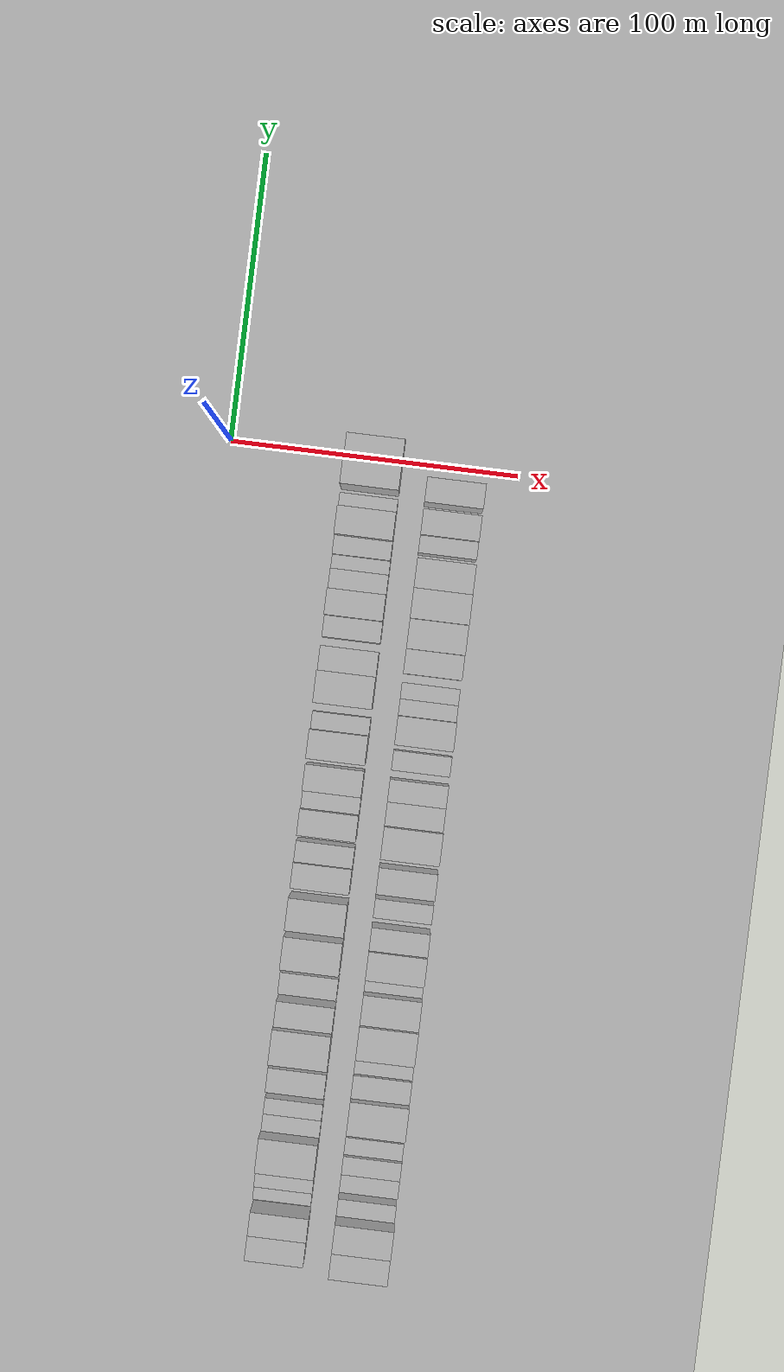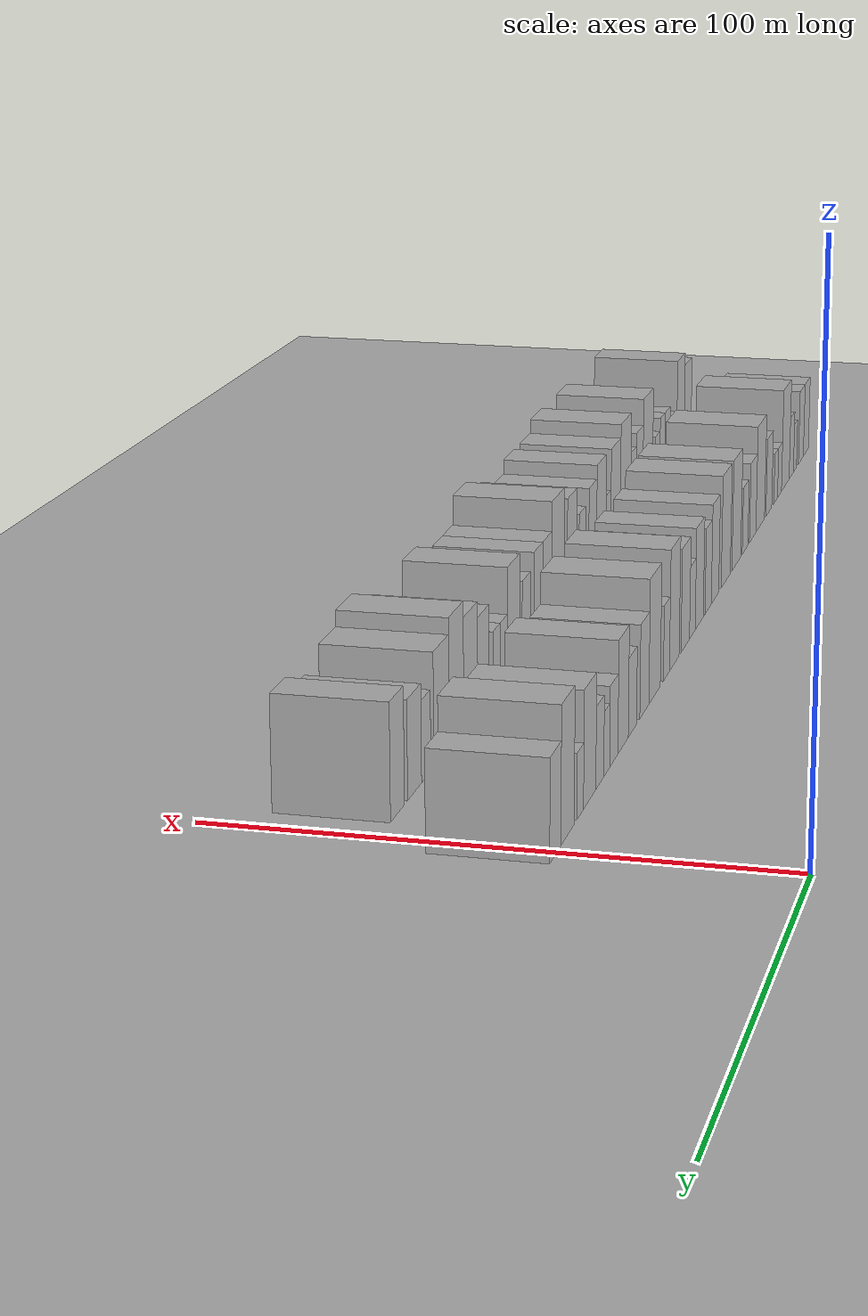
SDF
<sdf version="1.6">
 <world name="default">
  <include><name>ground_plane_1</name><uri>model://HANNAS_ground_plane</uri></include>
  <include>
   <name>ground_plane_2</name>
   <uri>model://HANNAS_ground_plane</uri>
   <pose>100 0 0  0 0 0</pose>
  </include>
  <model name="building_1">
   <static>1</static>
   <pose>50.0000 -271.8112 0 0.000000 0.000000 0.000000</pose>
   <link name="link">
    <pose>0 0 9.00 0 0 0</pose>
    <collision name="collision"><geometry><box><size>20.0000 8.3775 18.0000</size></box></geometry></collision>
    <visual name="visual">
     <cast_shadows>0</cast_shadows>
     <geometry><box><size>20.0000 8.3775 18.0000</size></box></geometry>
     <material>
      <script>
       <uri>model://HANNAS_wall/materials/scripts</uri>
       <uri>model://HANNAS_wall/materials/textures</uri>
       <name>vrc/HANNAS_wall</name>
      </script>
     </material>
    </visual>
   </link>
  </model>
  <model name="building_2">
   <static>1</static>
   <pose>50.0000 -263.5821 0 0.000000 0.000000 0.000000</pose>
   <link name="link">
    <pose>0 0 9.00 0 0 0</pose>
    <collision name="collision"><geometry><box><size>20.0000 8.0807 18.0000</size></box></geometry></collision>
    <visual name="visual">
     <cast_shadows>0</cast_shadows>
     <geometry><box><size>20.0000 8.0807 18.0000</size></box></geometry>
     <material>
      <script>
       <uri>model://HANNAS_wall/materials/scripts</uri>
       <uri>model://HANNAS_wall/materials/textures</uri>
       <name>vrc/HANNAS_wall</name>
      </script>
     </material>
    </visual>
   </link>
  </model>
  <model name="building_3">
   <static>1</static>
   <pose>50.0000 -254.0645 0 0.000000 0.000000 0.000000</pose>
   <link name="link">
    <pose>0 0 6.00 0 0 0</pose>
    <collision name="collision"><geometry><box><size>20.0000 4.9545 12.0000</size></box></geometry></collision>
    <visual name="visual">
     <cast_shadows>0</cast_shadows>
     <geometry><box><size>20.0000 4.9545 12.0000</size></box></geometry>
     <material>
      <script>
       <uri>model://HANNAS_wall/materials/scripts</uri>
       <uri>model://HANNAS_wall/materials/textures</uri>
       <name>vrc/HANNAS_wall</name>
      </script>
     </material>
    </visual>
   </link>
  </model>
  <model name="building_4">
   <static>1</static>
   <pose>50.0000 -248.2441 0 0.000000 0.000000 0.000000</pose>
   <link name="link">
    <pose>0 0 7.50 0 0 0</pose>
    <collision name="collision"><geometry><box><size>20.0000 6.6865 15.0000</size></box></geometry></collision>
    <visual name="visual">
     <cast_shadows>0</cast_shadows>
     <geometry><box><size>20.0000 6.6865 15.0000</size></box></geometry>
     <material>
      <script>
       <uri>model://HANNAS_wall/materials/scripts</uri>
       <uri>model://HANNAS_wall/materials/textures</uri>
       <name>vrc/HANNAS_wall</name>
      </script>
     </material>
    </visual>
   </link>
  </model>
  <model name="building_5">
   <static>1</static>
   <pose>50.0000 -239.0377 0 0.000000 0.000000 0.000000</pose>
   <link name="link">
    <pose>0 0 12.00 0 0 0</pose>
    <collision name="collision"><geometry><box><size>20.0000 11.7262 24.0000</size></box></geometry></collision>
    <visual name="visual">
     <cast_shadows>0</cast_shadows>
     <geometry><box><size>20.0000 11.7262 24.0000</size></box></geometry>
     <material>
      <script>
       <uri>model://HANNAS_wall/materials/scripts</uri>
       <uri>model://HANNAS_wall/materials/textures</uri>
       <name>vrc/HANNAS_wall</name>
      </script>
     </material>
    </visual>
   </link>
  </model>
  <model name="building_6">
   <static>1</static>
   <pose>50.0000 -230.2332 0 0.000000 0.000000 0.000000</pose>
   <link name="link">
    <pose>0 0 6.00 0 0 0</pose>
    <collision name="collision"><geometry><box><size>20.0000 5.8830 12.0000</size></box></geometry></collision>
    <visual name="visual">
     <cast_shadows>0</cast_shadows>
     <geometry><box><size>20.0000 5.8830 12.0000</size></box></geometry>
     <material>
      <script>
       <uri>model://HANNAS_wall/materials/scripts</uri>
       <uri>model://HANNAS_wall/materials/textures</uri>
       <name>vrc/HANNAS_wall</name>
      </script>
     </material>
    </visual>
   </link>
  </model>
  <model name="building_7">
   <static>1</static>
   <pose>50.0000 -224.5194 0 0.000000 0.000000 0.000000</pose>
   <link name="link">
    <pose>0 0 6.00 0 0 0</pose>
    <collision name="collision"><geometry><box><size>20.0000 5.5444 12.0000</size></box></geometry></collision>
    <visual name="visual">
     <cast_shadows>0</cast_shadows>
     <geometry><box><size>20.0000 5.5444 12.0000</size></box></geometry>
     <material>
      <script>
       <uri>model://HANNAS_wall/materials/scripts</uri>
       <uri>model://HANNAS_wall/materials/textures</uri>
       <name>vrc/HANNAS_wall</name>
      </script>
     </material>
    </visual>
   </link>
  </model>
  <model name="building_8">
   <static>1</static>
   <pose>50.0000 -214.5819 0 0.000000 0.000000 0.000000</pose>
   <link name="link">
    <pose>0 0 9.00 0 0 0</pose>
    <collision name="collision"><geometry><box><size>20.0000 8.3306 18.0000</size></box></geometry></collision>
    <visual name="visual">
     <cast_shadows>0</cast_shadows>
     <geometry><box><size>20.0000 8.3306 18.0000</size></box></geometry>
     <material>
      <script>
       <uri>model://HANNAS_wall/materials/scripts</uri>
       <uri>model://HANNAS_wall/materials/textures</uri>
       <name>vrc/HANNAS_wall</name>
      </script>
     </material>
    </visual>
   </link>
  </model>
  <model name="building_9">
   <static>1</static>
   <pose>50.0000 -202.4468 0 0.000000 0.000000 0.000000</pose>
   <link name="link">
    <pose>0 0 12.00 0 0 0</pose>
    <collision name="collision"><geometry><box><size>20.0000 11.9398 24.0000</size></box></geometry></collision>
    <visual name="visual">
     <cast_shadows>0</cast_shadows>
     <geometry><box><size>20.0000 11.9398 24.0000</size></box></geometry>
     <material>
      <script>
       <uri>model://HANNAS_wall/materials/scripts</uri>
       <uri>model://HANNAS_wall/materials/textures</uri>
       <name>vrc/HANNAS_wall</name>
      </script>
     </material>
    </visual>
   </link>
  </model>
  <model name="building_10">
   <static>1</static>
   <pose>50.0000 -192.0998 0 0.000000 0.000000 0.000000</pose>
   <link name="link">
    <pose>0 0 9.00 0 0 0</pose>
    <collision name="collision"><geometry><box><size>20.0000 8.7543 18.0000</size></box></geometry></collision>
    <visual name="visual">
     <cast_shadows>0</cast_shadows>
     <geometry><box><size>20.0000 8.7543 18.0000</size></box></geometry>
     <material>
      <script>
       <uri>model://HANNAS_wall/materials/scripts</uri>
       <uri>model://HANNAS_wall/materials/textures</uri>
       <name>vrc/HANNAS_wall</name>
      </script>
     </material>
    </visual>
   </link>
  </model>
  <model name="building_11">
   <static>1</static>
   <pose>50.0000 -182.0048 0 0.000000 0.000000 0.000000</pose>
   <link name="link">
    <pose>0 0 7.50 0 0 0</pose>
    <collision name="collision"><geometry><box><size>20.0000 7.4357 15.0000</size></box></geometry></collision>
    <visual name="visual">
     <cast_shadows>0</cast_shadows>
     <geometry><box><size>20.0000 7.4357 15.0000</size></box></geometry>
     <material>
      <script>
       <uri>model://HANNAS_wall/materials/scripts</uri>
       <uri>model://HANNAS_wall/materials/textures</uri>
       <name>vrc/HANNAS_wall</name>
      </script>
     </material>
    </visual>
   </link>
  </model>
  <model name="building_12">
   <static>1</static>
   <pose>50.0000 -170.6904 0 0.000000 0.000000 0.000000</pose>
   <link name="link">
    <pose>0 0 12.00 0 0 0</pose>
    <collision name="collision"><geometry><box><size>20.0000 11.1929 24.0000</size></box></geometry></collision>
    <visual name="visual">
     <cast_shadows>0</cast_shadows>
     <geometry><box><size>20.0000 11.1929 24.0000</size></box></geometry>
     <material>
      <script>
       <uri>model://HANNAS_wall/materials/scripts</uri>
       <uri>model://HANNAS_wall/materials/textures</uri>
       <name>vrc/HANNAS_wall</name>
      </script>
     </material>
    </visual>
   </link>
  </model>
  <model name="building_13">
   <static>1</static>
   <pose>50.0000 -157.5460 0 0.000000 0.000000 0.000000</pose>
   <link name="link">
    <pose>0 0 12.00 0 0 0</pose>
    <collision name="collision"><geometry><box><size>20.0000 11.0958 24.0000</size></box></geometry></collision>
    <visual name="visual">
     <cast_shadows>0</cast_shadows>
     <geometry><box><size>20.0000 11.0958 24.0000</size></box></geometry>
     <material>
      <script>
       <uri>model://HANNAS_wall/materials/scripts</uri>
       <uri>model://HANNAS_wall/materials/textures</uri>
       <name>vrc/HANNAS_wall</name>
      </script>
     </material>
    </visual>
   </link>
  </model>
  <model name="building_14">
   <static>1</static>
   <pose>50.0000 -144.6521 0 0.000000 0.000000 0.000000</pose>
   <link name="link">
    <pose>0 0 10.50 0 0 0</pose>
    <collision name="collision"><geometry><box><size>20.0000 8.6921 21.0000</size></box></geometry></collision>
    <visual name="visual">
     <cast_shadows>0</cast_shadows>
     <geometry><box><size>20.0000 8.6921 21.0000</size></box></geometry>
     <material>
      <script>
       <uri>model://HANNAS_wall/materials/scripts</uri>
       <uri>model://HANNAS_wall/materials/textures</uri>
       <name>vrc/HANNAS_wall</name>
      </script>
     </material>
    </visual>
   </link>
  </model>
  <model name="building_15">
   <static>1</static>
   <pose>50.0000 -136.6996 0 0.000000 0.000000 0.000000</pose>
   <link name="link">
    <pose>0 0 9.00 0 0 0</pose>
    <collision name="collision"><geometry><box><size>20.0000 7.2128 18.0000</size></box></geometry></collision>
    <visual name="visual">
     <cast_shadows>0</cast_shadows>
     <geometry><box><size>20.0000 7.2128 18.0000</size></box></geometry>
     <material>
      <script>
       <uri>model://HANNAS_wall/materials/scripts</uri>
       <uri>model://HANNAS_wall/materials/textures</uri>
       <name>vrc/HANNAS_wall</name>
      </script>
     </material>
    </visual>
   </link>
  </model>
  <model name="building_16">
   <static>1</static>
   <pose>50.0000 -126.6089 0 0.000000 0.000000 0.000000</pose>
   <link name="link">
    <pose>0 0 10.50 0 0 0</pose>
    <collision name="collision"><geometry><box><size>20.0000 8.9687 21.0000</size></box></geometry></collision>
    <visual name="visual">
     <cast_shadows>0</cast_shadows>
     <geometry><box><size>20.0000 8.9687 21.0000</size></box></geometry>
     <material>
      <script>
       <uri>model://HANNAS_wall/materials/scripts</uri>
       <uri>model://HANNAS_wall/materials/textures</uri>
       <name>vrc/HANNAS_wall</name>
      </script>
     </material>
    </visual>
   </link>
  </model>
  <model name="building_17">
   <static>1</static>
   <pose>50.0000 -119.0434 0 0.000000 0.000000 0.000000</pose>
   <link name="link">
    <pose>0 0 7.50 0 0 0</pose>
    <collision name="collision"><geometry><box><size>20.0000 6.1621 15.0000</size></box></geometry></collision>
    <visual name="visual">
     <cast_shadows>0</cast_shadows>
     <geometry><box><size>20.0000 6.1621 15.0000</size></box></geometry>
     <material>
      <script>
       <uri>model://HANNAS_wall/materials/scripts</uri>
       <uri>model://HANNAS_wall/materials/textures</uri>
       <name>vrc/HANNAS_wall</name>
      </script>
     </material>
    </visual>
   </link>
  </model>
  <model name="building_18">
   <static>1</static>
   <pose>50.0000 -111.4475 0 0.000000 0.000000 0.000000</pose>
   <link name="link">
    <pose>0 0 10.50 0 0 0</pose>
    <collision name="collision"><geometry><box><size>20.0000 9.0298 21.0000</size></box></geometry></collision>
    <visual name="visual">
     <cast_shadows>0</cast_shadows>
     <geometry><box><size>20.0000 9.0298 21.0000</size></box></geometry>
     <material>
      <script>
       <uri>model://HANNAS_wall/materials/scripts</uri>
       <uri>model://HANNAS_wall/materials/textures</uri>
       <name>vrc/HANNAS_wall</name>
      </script>
     </material>
    </visual>
   </link>
  </model>
  <model name="building_19">
   <static>1</static>
   <pose>50.0000 -99.9927 0 0.000000 0.000000 0.000000</pose>
   <link name="link">
    <pose>0 0 12.00 0 0 0</pose>
    <collision name="collision"><geometry><box><size>20.0000 9.8798 24.0000</size></box></geometry></collision>
    <visual name="visual">
     <cast_shadows>0</cast_shadows>
     <geometry><box><size>20.0000 9.8798 24.0000</size></box></geometry>
     <material>
      <script>
       <uri>model://HANNAS_wall/materials/scripts</uri>
       <uri>model://HANNAS_wall/materials/textures</uri>
       <name>vrc/HANNAS_wall</name>
      </script>
     </material>
    </visual>
   </link>
  </model>
  <model name="building_20">
   <static>1</static>
   <pose>50.0000 -92.0321 0 0.000000 0.000000 0.000000</pose>
   <link name="link">
    <pose>0 0 7.50 0 0 0</pose>
    <collision name="collision"><geometry><box><size>20.0000 6.0414 15.0000</size></box></geometry></collision>
    <visual name="visual">
     <cast_shadows>0</cast_shadows>
     <geometry><box><size>20.0000 6.0414 15.0000</size></box></geometry>
     <material>
      <script>
       <uri>model://HANNAS_wall/materials/scripts</uri>
       <uri>model://HANNAS_wall/materials/textures</uri>
       <name>vrc/HANNAS_wall</name>
      </script>
     </material>
    </visual>
   </link>
  </model>
  <model name="building_21">
   <static>1</static>
   <pose>50.0000 -80.5241 0 0.000000 0.000000 0.000000</pose>
   <link name="link">
    <pose>0 0 12.00 0 0 0</pose>
    <collision name="collision"><geometry><box><size>20.0000 10.9745 24.0000</size></box></geometry></collision>
    <visual name="visual">
     <cast_shadows>0</cast_shadows>
     <geometry><box><size>20.0000 10.9745 24.0000</size></box></geometry>
     <material>
      <script>
       <uri>model://HANNAS_wall/materials/scripts</uri>
       <uri>model://HANNAS_wall/materials/textures</uri>
       <name>vrc/HANNAS_wall</name>
      </script>
     </material>
    </visual>
   </link>
  </model>
  <model name="building_22">
   <static>1</static>
   <pose>50.0000 -70.8118 0 0.000000 0.000000 0.000000</pose>
   <link name="link">
    <pose>0 0 9.00 0 0 0</pose>
    <collision name="collision"><geometry><box><size>20.0000 8.4502 18.0000</size></box></geometry></collision>
    <visual name="visual">
     <cast_shadows>0</cast_shadows>
     <geometry><box><size>20.0000 8.4502 18.0000</size></box></geometry>
     <material>
      <script>
       <uri>model://HANNAS_wall/materials/scripts</uri>
       <uri>model://HANNAS_wall/materials/textures</uri>
       <name>vrc/HANNAS_wall</name>
      </script>
     </material>
    </visual>
   </link>
  </model>
  <model name="building_23">
   <static>1</static>
   <pose>50.0000 -59.8838 0 0.000000 0.000000 0.000000</pose>
   <link name="link">
    <pose>0 0 7.50 0 0 0</pose>
    <collision name="collision"><geometry><box><size>20.0000 7.4058 15.0000</size></box></geometry></collision>
    <visual name="visual">
     <cast_shadows>0</cast_shadows>
     <geometry><box><size>20.0000 7.4058 15.0000</size></box></geometry>
     <material>
      <script>
       <uri>model://HANNAS_wall/materials/scripts</uri>
       <uri>model://HANNAS_wall/materials/textures</uri>
       <name>vrc/HANNAS_wall</name>
      </script>
     </material>
    </visual>
   </link>
  </model>
  <model name="building_24">
   <static>1</static>
   <pose>50.0000 -51.6690 0 0.000000 0.000000 0.000000</pose>
   <link name="link">
    <pose>0 0 10.50 0 0 0</pose>
    <collision name="collision"><geometry><box><size>20.0000 9.0238 21.0000</size></box></geometry></collision>
    <visual name="visual">
     <cast_shadows>0</cast_shadows>
     <geometry><box><size>20.0000 9.0238 21.0000</size></box></geometry>
     <material>
      <script>
       <uri>model://HANNAS_wall/materials/scripts</uri>
       <uri>model://HANNAS_wall/materials/textures</uri>
       <name>vrc/HANNAS_wall</name>
      </script>
     </material>
    </visual>
   </link>
  </model>
  <model name="building_25">
   <static>1</static>
   <pose>50.0000 -43.6620 0 0.000000 0.000000 0.000000</pose>
   <link name="link">
    <pose>0 0 7.50 0 0 0</pose>
    <collision name="collision"><geometry><box><size>20.0000 6.9903 15.0000</size></box></geometry></collision>
    <visual name="visual">
     <cast_shadows>0</cast_shadows>
     <geometry><box><size>20.0000 6.9903 15.0000</size></box></geometry>
     <material>
      <script>
       <uri>model://HANNAS_wall/materials/scripts</uri>
       <uri>model://HANNAS_wall/materials/textures</uri>
       <name>vrc/HANNAS_wall</name>
      </script>
     </material>
    </visual>
   </link>
  </model>
  <model name="building_26">
   <static>1</static>
   <pose>50.0000 -37.7205 0 0.000000 0.000000 0.000000</pose>
   <link name="link">
    <pose>0 0 6.00 0 0 0</pose>
    <collision name="collision"><geometry><box><size>20.0000 4.8926 12.0000</size></box></geometry></collision>
    <visual name="visual">
     <cast_shadows>0</cast_shadows>
     <geometry><box><size>20.0000 4.8926 12.0000</size></box></geometry>
     <material>
      <script>
       <uri>model://HANNAS_wall/materials/scripts</uri>
       <uri>model://HANNAS_wall/materials/textures</uri>
       <name>vrc/HANNAS_wall</name>
      </script>
     </material>
    </visual>
   </link>
  </model>
  <model name="building_27">
   <static>1</static>
   <pose>50.0000 -32.0515 0 0.000000 0.000000 0.000000</pose>
   <link name="link">
    <pose>0 0 7.50 0 0 0</pose>
    <collision name="collision"><geometry><box><size>20.0000 6.4454 15.0000</size></box></geometry></collision>
    <visual name="visual">
     <cast_shadows>0</cast_shadows>
     <geometry><box><size>20.0000 6.4454 15.0000</size></box></geometry>
     <material>
      <script>
       <uri>model://HANNAS_wall/materials/scripts</uri>
       <uri>model://HANNAS_wall/materials/textures</uri>
       <name>vrc/HANNAS_wall</name>
      </script>
     </material>
    </visual>
   </link>
  </model>
  <model name="building_28">
   <static>1</static>
   <pose>50.0000 -23.9721 0 0.000000 0.000000 0.000000</pose>
   <link name="link">
    <pose>0 0 10.50 0 0 0</pose>
    <collision name="collision"><geometry><box><size>20.0000 9.7133 21.0000</size></box></geometry></collision>
    <visual name="visual">
     <cast_shadows>0</cast_shadows>
     <geometry><box><size>20.0000 9.7133 21.0000</size></box></geometry>
     <material>
      <script>
       <uri>model://HANNAS_wall/materials/scripts</uri>
       <uri>model://HANNAS_wall/materials/textures</uri>
       <name>vrc/HANNAS_wall</name>
      </script>
     </material>
    </visual>
   </link>
  </model>
  <model name="building_29">
   <static>1</static>
   <pose>50.0000 -16.5725 0 0.000000 0.000000 0.000000</pose>
   <link name="link">
    <pose>0 0 6.00 0 0 0</pose>
    <collision name="collision"><geometry><box><size>20.0000 5.0859 12.0000</size></box></geometry></collision>
    <visual name="visual">
     <cast_shadows>0</cast_shadows>
     <geometry><box><size>20.0000 5.0859 12.0000</size></box></geometry>
     <material>
      <script>
       <uri>model://HANNAS_wall/materials/scripts</uri>
       <uri>model://HANNAS_wall/materials/textures</uri>
       <name>vrc/HANNAS_wall</name>
      </script>
     </material>
    </visual>
   </link>
  </model>
  <model name="building_30">
   <static>1</static>
   <pose>50.0000 -7.0902 0 0.000000 0.000000 0.000000</pose>
   <link name="link">
    <pose>0 0 12.00 0 0 0</pose>
    <collision name="collision"><geometry><box><size>20.0000 9.8788 24.0000</size></box></geometry></collision>
    <visual name="visual">
     <cast_shadows>0</cast_shadows>
     <geometry><box><size>20.0000 9.8788 24.0000</size></box></geometry>
     <material>
      <script>
       <uri>model://HANNAS_wall/materials/scripts</uri>
       <uri>model://HANNAS_wall/materials/textures</uri>
       <name>vrc/HANNAS_wall</name>
      </script>
     </material>
    </visual>
   </link>
  </model>
  <model name="building_31">
   <static>1</static>
   <pose>50.0000 1.8893 0 0.000000 0.000000 0.000000</pose>
   <link name="link">
    <pose>0 0 9.00 0 0 0</pose>
    <collision name="collision"><geometry><box><size>20.0000 8.0801 18.0000</size></box></geometry></collision>
    <visual name="visual">
     <cast_shadows>0</cast_shadows>
     <geometry><box><size>20.0000 8.0801 18.0000</size></box></geometry>
     <material>
      <script>
       <uri>model://HANNAS_wall/materials/scripts</uri>
       <uri>model://HANNAS_wall/materials/textures</uri>
       <name>vrc/HANNAS_wall</name>
      </script>
     </material>
    </visual>
   </link>
  </model>
  <model name="building_60">
   <static>1</static>
   <pose>79.0000 -273.2672 0 0.000000 0.000000 0.000000</pose>
   <link name="link">
    <pose>0 0 10.50 0 0 0</pose>
    <collision name="collision"><geometry><box><size>20.0000 9.4655 21.0000</size></box></geometry></collision>
    <visual name="visual">
     <cast_shadows>0</cast_shadows>
     <geometry><box><size>20.0000 9.4655 21.0000</size></box></geometry>
     <material>
      <script>
       <uri>model://HANNAS_wall/materials/scripts</uri>
       <uri>model://HANNAS_wall/materials/textures</uri>
       <name>vrc/HANNAS_wall</name>
      </script>
     </material>
    </visual>
   </link>
  </model>
  <model name="building_61">
   <static>1</static>
   <pose>79.0000 -263.6652 0 0.000000 0.000000 0.000000</pose>
   <link name="link">
    <pose>0 0 12.00 0 0 0</pose>
    <collision name="collision"><geometry><box><size>20.0000 9.7386 24.0000</size></box></geometry></collision>
    <visual name="visual">
     <cast_shadows>0</cast_shadows>
     <geometry><box><size>20.0000 9.7386 24.0000</size></box></geometry>
     <material>
      <script>
       <uri>model://HANNAS_wall/materials/scripts</uri>
       <uri>model://HANNAS_wall/materials/textures</uri>
       <name>vrc/HANNAS_wall</name>
      </script>
     </material>
    </visual>
   </link>
  </model>
  <model name="building_62">
   <static>1</static>
   <pose>79.0000 -255.8377 0 0.000000 0.000000 0.000000</pose>
   <link name="link">
    <pose>0 0 6.00 0 0 0</pose>
    <collision name="collision"><geometry><box><size>20.0000 5.9163 12.0000</size></box></geometry></collision>
    <visual name="visual">
     <cast_shadows>0</cast_shadows>
     <geometry><box><size>20.0000 5.9163 12.0000</size></box></geometry>
     <material>
      <script>
       <uri>model://HANNAS_wall/materials/scripts</uri>
       <uri>model://HANNAS_wall/materials/textures</uri>
       <name>vrc/HANNAS_wall</name>
      </script>
     </material>
    </visual>
   </link>
  </model>
  <model name="building_63">
   <static>1</static>
   <pose>79.0000 -246.8693 0 0.000000 0.000000 0.000000</pose>
   <link name="link">
    <pose>0 0 7.50 0 0 0</pose>
    <collision name="collision"><geometry><box><size>20.0000 6.0205 15.0000</size></box></geometry></collision>
    <visual name="visual">
     <cast_shadows>0</cast_shadows>
     <geometry><box><size>20.0000 6.0205 15.0000</size></box></geometry>
     <material>
      <script>
       <uri>model://HANNAS_wall/materials/scripts</uri>
       <uri>model://HANNAS_wall/materials/textures</uri>
       <name>vrc/HANNAS_wall</name>
      </script>
     </material>
    </visual>
   </link>
  </model>
  <model name="building_64">
   <static>1</static>
   <pose>79.0000 -240.7284 0 0.000000 0.000000 0.000000</pose>
   <link name="link">
    <pose>0 0 7.50 0 0 0</pose>
    <collision name="collision"><geometry><box><size>20.0000 6.2613 15.0000</size></box></geometry></collision>
    <visual name="visual">
     <cast_shadows>0</cast_shadows>
     <geometry><box><size>20.0000 6.2613 15.0000</size></box></geometry>
     <material>
      <script>
       <uri>model://HANNAS_wall/materials/scripts</uri>
       <uri>model://HANNAS_wall/materials/textures</uri>
       <name>vrc/HANNAS_wall</name>
      </script>
     </material>
    </visual>
   </link>
  </model>
  <model name="building_65">
   <static>1</static>
   <pose>79.0000 -234.6587 0 0.000000 0.000000 0.000000</pose>
   <link name="link">
    <pose>0 0 6.00 0 0 0</pose>
    <collision name="collision"><geometry><box><size>20.0000 5.8780 12.0000</size></box></geometry></collision>
    <visual name="visual">
     <cast_shadows>0</cast_shadows>
     <geometry><box><size>20.0000 5.8780 12.0000</size></box></geometry>
     <material>
      <script>
       <uri>model://HANNAS_wall/materials/scripts</uri>
       <uri>model://HANNAS_wall/materials/textures</uri>
       <name>vrc/HANNAS_wall</name>
      </script>
     </material>
    </visual>
   </link>
  </model>
  <model name="building_66">
   <static>1</static>
   <pose>79.0000 -222.9857 0 0.000000 0.000000 0.000000</pose>
   <link name="link">
    <pose>0 0 12.00 0 0 0</pose>
    <collision name="collision"><geometry><box><size>20.0000 11.4681 24.0000</size></box></geometry></collision>
    <visual name="visual">
     <cast_shadows>0</cast_shadows>
     <geometry><box><size>20.0000 11.4681 24.0000</size></box></geometry>
     <material>
      <script>
       <uri>model://HANNAS_wall/materials/scripts</uri>
       <uri>model://HANNAS_wall/materials/textures</uri>
       <name>vrc/HANNAS_wall</name>
      </script>
     </material>
    </visual>
   </link>
  </model>
  <model name="building_67">
   <static>1</static>
   <pose>79.0000 -213.2998 0 0.000000 0.000000 0.000000</pose>
   <link name="link">
    <pose>0 0 9.00 0 0 0</pose>
    <collision name="collision"><geometry><box><size>20.0000 7.9037 18.0000</size></box></geometry></collision>
    <visual name="visual">
     <cast_shadows>0</cast_shadows>
     <geometry><box><size>20.0000 7.9037 18.0000</size></box></geometry>
     <material>
      <script>
       <uri>model://HANNAS_wall/materials/scripts</uri>
       <uri>model://HANNAS_wall/materials/textures</uri>
       <name>vrc/HANNAS_wall</name>
      </script>
     </material>
    </visual>
   </link>
  </model>
  <model name="building_68">
   <static>1</static>
   <pose>79.0000 -206.2962 0 0.000000 0.000000 0.000000</pose>
   <link name="link">
    <pose>0 0 7.50 0 0 0</pose>
    <collision name="collision"><geometry><box><size>20.0000 6.1034 15.0000</size></box></geometry></collision>
    <visual name="visual">
     <cast_shadows>0</cast_shadows>
     <geometry><box><size>20.0000 6.1034 15.0000</size></box></geometry>
     <material>
      <script>
       <uri>model://HANNAS_wall/materials/scripts</uri>
       <uri>model://HANNAS_wall/materials/textures</uri>
       <name>vrc/HANNAS_wall</name>
      </script>
     </material>
    </visual>
   </link>
  </model>
  <model name="building_69">
   <static>1</static>
   <pose>79.0000 -197.5754 0 0.000000 0.000000 0.000000</pose>
   <link name="link">
    <pose>0 0 12.00 0 0 0</pose>
    <collision name="collision"><geometry><box><size>20.0000 11.3381 24.0000</size></box></geometry></collision>
    <visual name="visual">
     <cast_shadows>0</cast_shadows>
     <geometry><box><size>20.0000 11.3381 24.0000</size></box></geometry>
     <material>
      <script>
       <uri>model://HANNAS_wall/materials/scripts</uri>
       <uri>model://HANNAS_wall/materials/textures</uri>
       <name>vrc/HANNAS_wall</name>
      </script>
     </material>
    </visual>
   </link>
  </model>
  <model name="building_70">
   <static>1</static>
   <pose>79.0000 -186.7995 0 0.000000 0.000000 0.000000</pose>
   <link name="link">
    <pose>0 0 10.50 0 0 0</pose>
    <collision name="collision"><geometry><box><size>20.0000 10.2138 21.0000</size></box></geometry></collision>
    <visual name="visual">
     <cast_shadows>0</cast_shadows>
     <geometry><box><size>20.0000 10.2138 21.0000</size></box></geometry>
     <material>
      <script>
       <uri>model://HANNAS_wall/materials/scripts</uri>
       <uri>model://HANNAS_wall/materials/textures</uri>
       <name>vrc/HANNAS_wall</name>
      </script>
     </material>
    </visual>
   </link>
  </model>
  <model name="building_71">
   <static>1</static>
   <pose>79.0000 -179.2257 0 0.000000 0.000000 0.000000</pose>
   <link name="link">
    <pose>0 0 6.00 0 0 0</pose>
    <collision name="collision"><geometry><box><size>20.0000 4.9337 12.0000</size></box></geometry></collision>
    <visual name="visual">
     <cast_shadows>0</cast_shadows>
     <geometry><box><size>20.0000 4.9337 12.0000</size></box></geometry>
     <material>
      <script>
       <uri>model://HANNAS_wall/materials/scripts</uri>
       <uri>model://HANNAS_wall/materials/textures</uri>
       <name>vrc/HANNAS_wall</name>
      </script>
     </material>
    </visual>
   </link>
  </model>
  <model name="building_72">
   <static>1</static>
   <pose>79.0000 -171.8806 0 0.000000 0.000000 0.000000</pose>
   <link name="link">
    <pose>0 0 10.50 0 0 0</pose>
    <collision name="collision"><geometry><box><size>20.0000 9.7565 21.0000</size></box></geometry></collision>
    <visual name="visual">
     <cast_shadows>0</cast_shadows>
     <geometry><box><size>20.0000 9.7565 21.0000</size></box></geometry>
     <material>
      <script>
       <uri>model://HANNAS_wall/materials/scripts</uri>
       <uri>model://HANNAS_wall/materials/textures</uri>
       <name>vrc/HANNAS_wall</name>
      </script>
     </material>
    </visual>
   </link>
  </model>
  <model name="building_73">
   <static>1</static>
   <pose>79.0000 -163.0456 0 0.000000 0.000000 0.000000</pose>
   <link name="link">
    <pose>0 0 9.00 0 0 0</pose>
    <collision name="collision"><geometry><box><size>20.0000 7.9136 18.0000</size></box></geometry></collision>
    <visual name="visual">
     <cast_shadows>0</cast_shadows>
     <geometry><box><size>20.0000 7.9136 18.0000</size></box></geometry>
     <material>
      <script>
       <uri>model://HANNAS_wall/materials/scripts</uri>
       <uri>model://HANNAS_wall/materials/textures</uri>
       <name>vrc/HANNAS_wall</name>
      </script>
     </material>
    </visual>
   </link>
  </model>
  <model name="building_74">
   <static>1</static>
   <pose>79.0000 -152.8099 0 0.000000 0.000000 0.000000</pose>
   <link name="link">
    <pose>0 0 7.50 0 0 0</pose>
    <collision name="collision"><geometry><box><size>20.0000 6.5578 15.0000</size></box></geometry></collision>
    <visual name="visual">
     <cast_shadows>0</cast_shadows>
     <geometry><box><size>20.0000 6.5578 15.0000</size></box></geometry>
     <material>
      <script>
       <uri>model://HANNAS_wall/materials/scripts</uri>
       <uri>model://HANNAS_wall/materials/textures</uri>
       <name>vrc/HANNAS_wall</name>
      </script>
     </material>
    </visual>
   </link>
  </model>
  <model name="building_75">
   <static>1</static>
   <pose>79.0000 -142.9900 0 0.000000 0.000000 0.000000</pose>
   <link name="link">
    <pose>0 0 10.50 0 0 0</pose>
    <collision name="collision"><geometry><box><size>20.0000 9.0820 21.0000</size></box></geometry></collision>
    <visual name="visual">
     <cast_shadows>0</cast_shadows>
     <geometry><box><size>20.0000 9.0820 21.0000</size></box></geometry>
     <material>
      <script>
       <uri>model://HANNAS_wall/materials/scripts</uri>
       <uri>model://HANNAS_wall/materials/textures</uri>
       <name>vrc/HANNAS_wall</name>
      </script>
     </material>
    </visual>
   </link>
  </model>
  <model name="building_76">
   <static>1</static>
   <pose>79.0000 -129.9418 0 0.000000 0.000000 0.000000</pose>
   <link name="link">
    <pose>0 0 12.00 0 0 0</pose>
    <collision name="collision"><geometry><box><size>20.0000 11.0143 24.0000</size></box></geometry></collision>
    <visual name="visual">
     <cast_shadows>0</cast_shadows>
     <geometry><box><size>20.0000 11.0143 24.0000</size></box></geometry>
     <material>
      <script>
       <uri>model://HANNAS_wall/materials/scripts</uri>
       <uri>model://HANNAS_wall/materials/textures</uri>
       <name>vrc/HANNAS_wall</name>
      </script>
     </material>
    </visual>
   </link>
  </model>
  <model name="building_77">
   <static>1</static>
   <pose>79.0000 -120.3730 0 0.000000 0.000000 0.000000</pose>
   <link name="link">
    <pose>0 0 9.00 0 0 0</pose>
    <collision name="collision"><geometry><box><size>20.0000 8.1234 18.0000</size></box></geometry></collision>
    <visual name="visual">
     <cast_shadows>0</cast_shadows>
     <geometry><box><size>20.0000 8.1234 18.0000</size></box></geometry>
     <material>
      <script>
       <uri>model://HANNAS_wall/materials/scripts</uri>
       <uri>model://HANNAS_wall/materials/textures</uri>
       <name>vrc/HANNAS_wall</name>
      </script>
     </material>
    </visual>
   </link>
  </model>
  <model name="building_78">
   <static>1</static>
   <pose>79.0000 -112.4714 0 0.000000 0.000000 0.000000</pose>
   <link name="link">
    <pose>0 0 9.00 0 0 0</pose>
    <collision name="collision"><geometry><box><size>20.0000 7.6798 18.0000</size></box></geometry></collision>
    <visual name="visual">
     <cast_shadows>0</cast_shadows>
     <geometry><box><size>20.0000 7.6798 18.0000</size></box></geometry>
     <material>
      <script>
       <uri>model://HANNAS_wall/materials/scripts</uri>
       <uri>model://HANNAS_wall/materials/textures</uri>
       <name>vrc/HANNAS_wall</name>
      </script>
     </material>
    </visual>
   </link>
  </model>
  <model name="building_79">
   <static>1</static>
   <pose>79.0000 -102.2353 0 0.000000 0.000000 0.000000</pose>
   <link name="link">
    <pose>0 0 7.50 0 0 0</pose>
    <collision name="collision"><geometry><box><size>20.0000 6.7924 15.0000</size></box></geometry></collision>
    <visual name="visual">
     <cast_shadows>0</cast_shadows>
     <geometry><box><size>20.0000 6.7924 15.0000</size></box></geometry>
     <material>
      <script>
       <uri>model://HANNAS_wall/materials/scripts</uri>
       <uri>model://HANNAS_wall/materials/textures</uri>
       <name>vrc/HANNAS_wall</name>
      </script>
     </material>
    </visual>
   </link>
  </model>
  <model name="building_80">
   <static>1</static>
   <pose>79.0000 -91.9015 0 0.000000 0.000000 0.000000</pose>
   <link name="link">
    <pose>0 0 10.50 0 0 0</pose>
    <collision name="collision"><geometry><box><size>20.0000 9.8751 21.0000</size></box></geometry></collision>
    <visual name="visual">
     <cast_shadows>0</cast_shadows>
     <geometry><box><size>20.0000 9.8751 21.0000</size></box></geometry>
     <material>
      <script>
       <uri>model://HANNAS_wall/materials/scripts</uri>
       <uri>model://HANNAS_wall/materials/textures</uri>
       <name>vrc/HANNAS_wall</name>
      </script>
     </material>
    </visual>
   </link>
  </model>
  <model name="building_81">
   <static>1</static>
   <pose>79.0000 -84.1158 0 0.000000 0.000000 0.000000</pose>
   <link name="link">
    <pose>0 0 6.00 0 0 0</pose>
    <collision name="collision"><geometry><box><size>20.0000 5.6962 12.0000</size></box></geometry></collision>
    <visual name="visual">
     <cast_shadows>0</cast_shadows>
     <geometry><box><size>20.0000 5.6962 12.0000</size></box></geometry>
     <material>
      <script>
       <uri>model://HANNAS_wall/materials/scripts</uri>
       <uri>model://HANNAS_wall/materials/textures</uri>
       <name>vrc/HANNAS_wall</name>
      </script>
     </material>
    </visual>
   </link>
  </model>
  <model name="building_82">
   <static>1</static>
   <pose>79.0000 -78.4565 0 0.000000 0.000000 0.000000</pose>
   <link name="link">
    <pose>0 0 6.00 0 0 0</pose>
    <collision name="collision"><geometry><box><size>20.0000 5.6225 12.0000</size></box></geometry></collision>
    <visual name="visual">
     <cast_shadows>0</cast_shadows>
     <geometry><box><size>20.0000 5.6225 12.0000</size></box></geometry>
     <material>
      <script>
       <uri>model://HANNAS_wall/materials/scripts</uri>
       <uri>model://HANNAS_wall/materials/textures</uri>
       <name>vrc/HANNAS_wall</name>
      </script>
     </material>
    </visual>
   </link>
  </model>
  <model name="building_83">
   <static>1</static>
   <pose>79.0000 -68.4065 0 0.000000 0.000000 0.000000</pose>
   <link name="link">
    <pose>0 0 9.00 0 0 0</pose>
    <collision name="collision"><geometry><box><size>20.0000 8.4775 18.0000</size></box></geometry></collision>
    <visual name="visual">
     <cast_shadows>0</cast_shadows>
     <geometry><box><size>20.0000 8.4775 18.0000</size></box></geometry>
     <material>
      <script>
       <uri>model://HANNAS_wall/materials/scripts</uri>
       <uri>model://HANNAS_wall/materials/textures</uri>
       <name>vrc/HANNAS_wall</name>
      </script>
     </material>
    </visual>
   </link>
  </model>
  <model name="building_84">
   <static>1</static>
   <pose>79.0000 -59.0621 0 0.000000 0.000000 0.000000</pose>
   <link name="link">
    <pose>0 0 10.50 0 0 0</pose>
    <collision name="collision"><geometry><box><size>20.0000 10.2111 21.0000</size></box></geometry></collision>
    <visual name="visual">
     <cast_shadows>0</cast_shadows>
     <geometry><box><size>20.0000 10.2111 21.0000</size></box></geometry>
     <material>
      <script>
       <uri>model://HANNAS_wall/materials/scripts</uri>
       <uri>model://HANNAS_wall/materials/textures</uri>
       <name>vrc/HANNAS_wall</name>
      </script>
     </material>
    </visual>
   </link>
  </model>
  <model name="building_85">
   <static>1</static>
   <pose>79.0000 -48.8124 0 0.000000 0.000000 0.000000</pose>
   <link name="link">
    <pose>0 0 12.00 0 0 0</pose>
    <collision name="collision"><geometry><box><size>20.0000 10.2884 24.0000</size></box></geometry></collision>
    <visual name="visual">
     <cast_shadows>0</cast_shadows>
     <geometry><box><size>20.0000 10.2884 24.0000</size></box></geometry>
     <material>
      <script>
       <uri>model://HANNAS_wall/materials/scripts</uri>
       <uri>model://HANNAS_wall/materials/textures</uri>
       <name>vrc/HANNAS_wall</name>
      </script>
     </material>
    </visual>
   </link>
  </model>
  <model name="building_86">
   <static>1</static>
   <pose>79.0000 -38.5170 0 0.000000 0.000000 0.000000</pose>
   <link name="link">
    <pose>0 0 10.50 0 0 0</pose>
    <collision name="collision"><geometry><box><size>20.0000 10.3025 21.0000</size></box></geometry></collision>
    <visual name="visual">
     <cast_shadows>0</cast_shadows>
     <geometry><box><size>20.0000 10.3025 21.0000</size></box></geometry>
     <material>
      <script>
       <uri>model://HANNAS_wall/materials/scripts</uri>
       <uri>model://HANNAS_wall/materials/textures</uri>
       <name>vrc/HANNAS_wall</name>
      </script>
     </material>
    </visual>
   </link>
  </model>
  <model name="building_87">
   <static>1</static>
   <pose>79.0000 -28.3432 0 0.000000 0.000000 0.000000</pose>
   <link name="link">
    <pose>0 0 7.50 0 0 0</pose>
    <collision name="collision"><geometry><box><size>20.0000 6.0449 15.0000</size></box></geometry></collision>
    <visual name="visual">
     <cast_shadows>0</cast_shadows>
     <geometry><box><size>20.0000 6.0449 15.0000</size></box></geometry>
     <material>
      <script>
       <uri>model://HANNAS_wall/materials/scripts</uri>
       <uri>model://HANNAS_wall/materials/textures</uri>
       <name>vrc/HANNAS_wall</name>
      </script>
     </material>
    </visual>
   </link>
  </model>
  <model name="building_88">
   <static>1</static>
   <pose>79.0000 -20.9120 0 0.000000 0.000000 0.000000</pose>
   <link name="link">
    <pose>0 0 9.00 0 0 0</pose>
    <collision name="collision"><geometry><box><size>20.0000 8.8177 18.0000</size></box></geometry></collision>
    <visual name="visual">
     <cast_shadows>0</cast_shadows>
     <geometry><box><size>20.0000 8.8177 18.0000</size></box></geometry>
     <material>
      <script>
       <uri>model://HANNAS_wall/materials/scripts</uri>
       <uri>model://HANNAS_wall/materials/textures</uri>
       <name>vrc/HANNAS_wall</name>
      </script>
     </material>
    </visual>
   </link>
  </model>
  <model name="building_89">
   <static>1</static>
   <pose>79.0000 -10.2408 0 0.000000 0.000000 0.000000</pose>
   <link name="link">
    <pose>0 0 10.50 0 0 0</pose>
    <collision name="collision"><geometry><box><size>20.0000 8.5247 21.0000</size></box></geometry></collision>
    <visual name="visual">
     <cast_shadows>0</cast_shadows>
     <geometry><box><size>20.0000 8.5247 21.0000</size></box></geometry>
     <material>
      <script>
       <uri>model://HANNAS_wall/materials/scripts</uri>
       <uri>model://HANNAS_wall/materials/textures</uri>
       <name>vrc/HANNAS_wall</name>
      </script>
     </material>
    </visual>
   </link>
  </model>
 </world>
</sdf>
